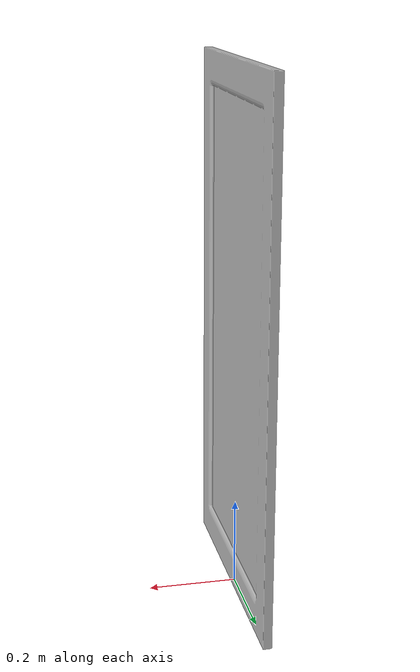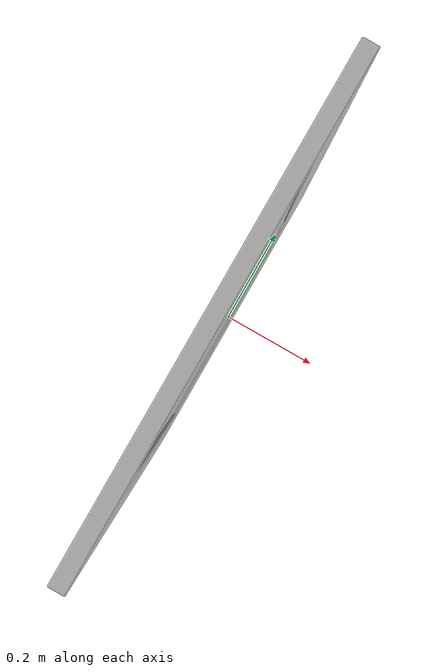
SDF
<?xml version='1.0'?>
<sdf version='1.4'>
  <model name='144'>
    <pose>0 0 0 0 0 0</pose>
    <static>true</static>
    <link name='link'>
      <collision name='collision'>
        <pose>0 0 0 0 0 0</pose>
        <geometry>
          <box>
            <size>0.0200001 0.6 2</size>
          </box>
        </geometry>
      </collision>
      <visual name='visual'>
        <pose>0 0 0 0 0 0</pose>
        <geometry>
          <mesh><uri>model://144/144.dae</uri></mesh>
        </geometry>
      </visual>
    </link>
  </model>
</sdf>
